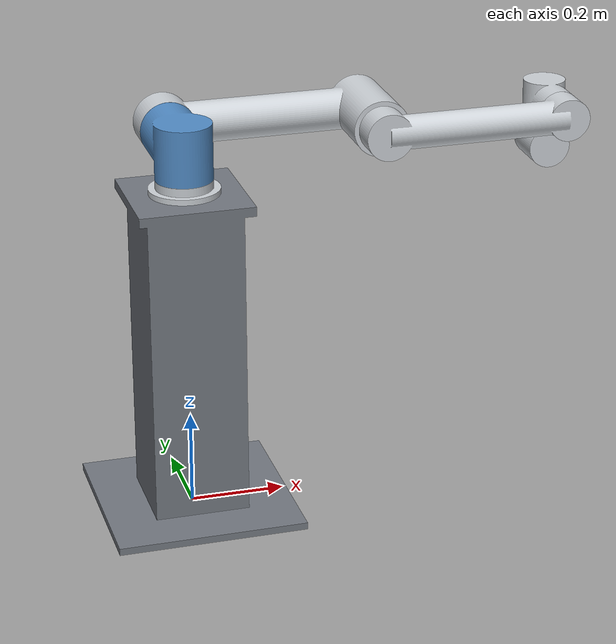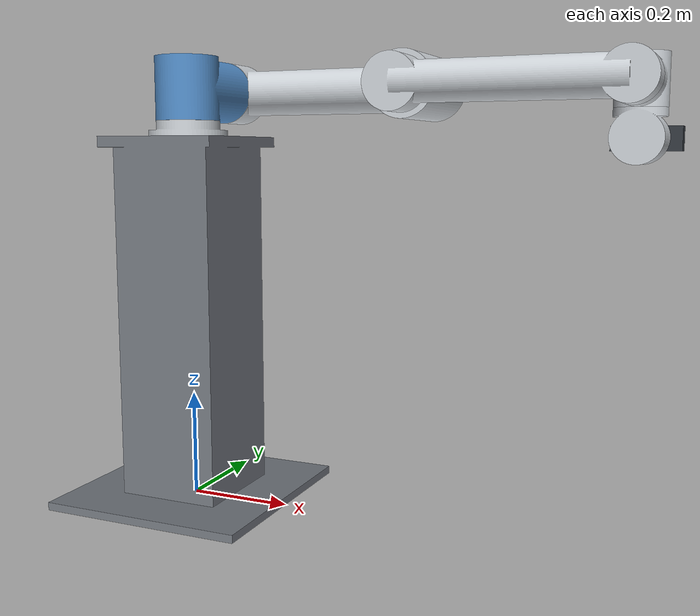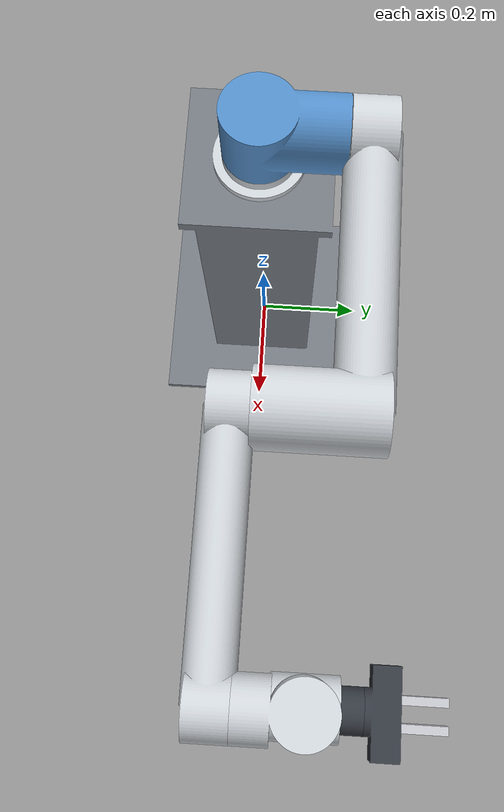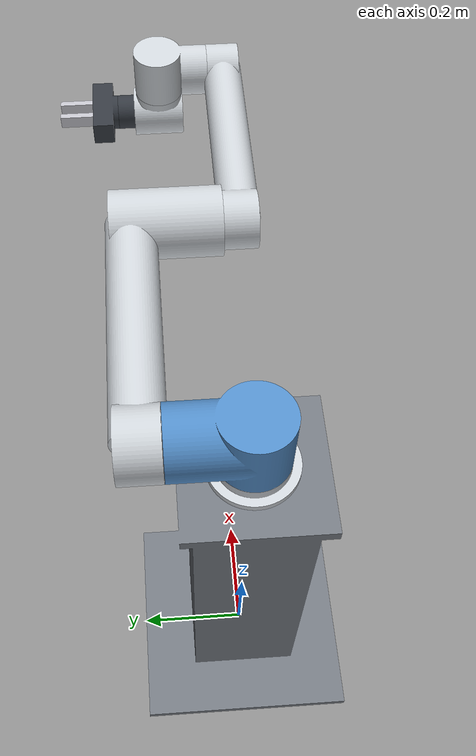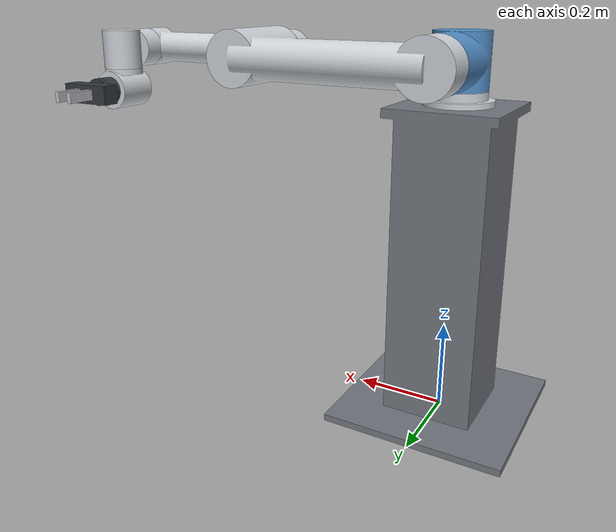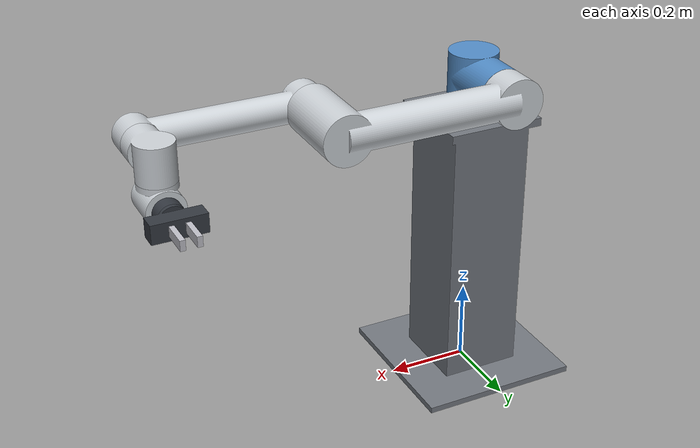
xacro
<?xml version="1.0" encoding="utf-8"?>
<!-- UR5 fixed manipulator
     Generated by build_models.py (CAD -> URDF). Meshes in package://ur5_description/meshes -->
<robot name="ur5" xmlns:xacro="http://www.ros.org/wiki/xacro">
  <!-- path to config/ros2_controllers.yaml, passed in by launch/gazebo.launch.py -->
  <xacro:arg name="controllers_file" default=""/>

  <link name="world"/>
  <link name="pedestal_link">
    <inertial>
      <origin xyz="0 0 0.327162" rpy="0 0 0"/>
      <mass value="25"/>
      <inertia ixx="1.28266" ixy="0" ixz="0" iyy="1.28266" iyz="0" izz="0.208436"/>
    </inertial>
    <visual>
      <origin xyz="0 0 0" rpy="0 0 0"/>
      <geometry>
        <mesh filename="package://ur5_description/meshes/pedestal_link.STL"/>
      </geometry>
      <material name="pedestal_link_material">
        <color rgba="0.45 0.47 0.5 1"/>
      </material>
    </visual>
    <collision>
      <origin xyz="0 0 0" rpy="0 0 0"/>
      <geometry>
        <mesh filename="package://ur5_description/meshes/pedestal_link.STL"/>
      </geometry>
    </collision>
  </link>
  <link name="base_link">
    <inertial>
      <origin xyz="0 0 0.0133971" rpy="0 0 0"/>
      <mass value="4"/>
      <inertia ixx="0.00489105" ixy="0" ixz="0" iyy="0.00489105" iyz="0" izz="0.00917701"/>
    </inertial>
    <visual>
      <origin xyz="0 0 0" rpy="0 0 0"/>
      <geometry>
        <mesh filename="package://ur5_description/meshes/base_link.STL"/>
      </geometry>
      <material name="base_link_material">
        <color rgba="0.8 0.82 0.84 1"/>
      </material>
    </visual>
    <collision>
      <origin xyz="0 0 0" rpy="0 0 0"/>
      <geometry>
        <mesh filename="package://ur5_description/meshes/base_link.STL"/>
      </geometry>
    </collision>
  </link>
  <link name="shoulder_link">
    <inertial>
      <origin xyz="0 0.035876 0.000234252" rpy="0 0 0"/>
      <mass value="3.7"/>
      <inertia ixx="0.0125603" ixy="0" ixz="0" iyy="0.00714574" iyz="3.10949e-05" izz="0.0120746"/>
    </inertial>
    <visual>
      <origin xyz="0 0 0" rpy="0 0 0"/>
      <geometry>
        <mesh filename="package://ur5_description/meshes/shoulder_link.STL"/>
      </geometry>
      <material name="shoulder_link_material">
        <color rgba="0.32 0.55 0.78 1"/>
      </material>
    </visual>
    <collision>
      <origin xyz="0 0 0" rpy="0 0 0"/>
      <geometry>
        <mesh filename="package://ur5_description/meshes/shoulder_link.STL"/>
      </geometry>
    </collision>
  </link>
  <link name="upper_arm_link">
    <inertial>
      <origin xyz="0 0.0117467 0.264596" rpy="0 0 0"/>
      <mass value="8.393"/>
      <inertia ixx="0.261276" ixy="0" ixz="0" iyy="0.247881" iyz="0.0313052" izz="0.0252335"/>
    </inertial>
    <visual>
      <origin xyz="0 0 0" rpy="0 0 0"/>
      <geometry>
        <mesh filename="package://ur5_description/meshes/upper_arm_link.STL"/>
      </geometry>
      <material name="upper_arm_link_material">
        <color rgba="0.8 0.82 0.84 1"/>
      </material>
    </visual>
    <collision>
      <origin xyz="0 0 0" rpy="0 0 0"/>
      <geometry>
        <mesh filename="package://ur5_description/meshes/upper_arm_link.STL"/>
      </geometry>
    </collision>
  </link>
  <link name="forearm_link">
    <inertial>
      <origin xyz="0 -0.03 0.188958" rpy="0 0 0"/>
      <mass value="2.275"/>
      <inertia ixx="0.0505335" ixy="0" ixz="0" iyy="0.0507488" iyz="0" izz="0.0016515"/>
    </inertial>
    <visual>
      <origin xyz="0 0 0" rpy="0 0 0"/>
      <geometry>
        <mesh filename="package://ur5_description/meshes/forearm_link.STL"/>
      </geometry>
      <material name="forearm_link_material">
        <color rgba="0.8 0.82 0.84 1"/>
      </material>
    </visual>
    <collision>
      <origin xyz="0 0 0" rpy="0 0 0"/>
      <geometry>
        <mesh filename="package://ur5_description/meshes/forearm_link.STL"/>
      </geometry>
    </collision>
  </link>
  <link name="wrist_1_link">
    <inertial>
      <origin xyz="0 0.0687143 0" rpy="0 0 0"/>
      <mass value="1.219"/>
      <inertia ixx="0.00253091" ixy="0" ixz="0" iyy="0.00136648" iyz="0" izz="0.00239867"/>
    </inertial>
    <visual>
      <origin xyz="0 0 0" rpy="0 0 0"/>
      <geometry>
        <mesh filename="package://ur5_description/meshes/wrist_1_link.STL"/>
      </geometry>
      <material name="wrist_1_link_material">
        <color rgba="0.8 0.82 0.84 1"/>
      </material>
    </visual>
    <collision>
      <origin xyz="0 0 0" rpy="0 0 0"/>
      <geometry>
        <mesh filename="package://ur5_description/meshes/wrist_1_link.STL"/>
      </geometry>
    </collision>
  </link>
  <link name="wrist_2_link">
    <inertial>
      <origin xyz="0 0.00215909 0.0889023" rpy="0 0 0"/>
      <mass value="1.219"/>
      <inertia ixx="0.00166796" ixy="0" ixz="0" iyy="0.00140825" iyz="-1.51276e-05" izz="0.00149394"/>
    </inertial>
    <visual>
      <origin xyz="0 0 0" rpy="0 0 0"/>
      <geometry>
        <mesh filename="package://ur5_description/meshes/wrist_2_link.STL"/>
      </geometry>
      <material name="wrist_2_link_material">
        <color rgba="0.8 0.82 0.84 1"/>
      </material>
    </visual>
    <collision>
      <origin xyz="0 0 0" rpy="0 0 0"/>
      <geometry>
        <mesh filename="package://ur5_description/meshes/wrist_2_link.STL"/>
      </geometry>
    </collision>
  </link>
  <link name="wrist_3_link">
    <inertial>
      <origin xyz="0 0.06615 0" rpy="0 0 0"/>
      <mass value="0.1879"/>
      <inertia ixx="6.44386e-05" ixy="0" ixz="0" iyy="9.62048e-05" iyz="0" izz="6.44386e-05"/>
    </inertial>
    <visual>
      <origin xyz="0 0 0" rpy="0 0 0"/>
      <geometry>
        <mesh filename="package://ur5_description/meshes/wrist_3_link.STL"/>
      </geometry>
      <material name="wrist_3_link_material">
        <color rgba="0.2 0.22 0.25 1"/>
      </material>
    </visual>
    <collision>
      <origin xyz="0 0 0" rpy="0 0 0"/>
      <geometry>
        <mesh filename="package://ur5_description/meshes/wrist_3_link.STL"/>
      </geometry>
    </collision>
  </link>
  <link name="tool0"/>
  <link name="gripper_base_link">
    <inertial>
      <origin xyz="0.0267883 0 0" rpy="0 0 0"/>
      <mass value="0.25"/>
      <inertia ixx="0.000330776" ixy="0" ixz="0" iyy="9.01869e-05" iyz="0" izz="0.000334216"/>
    </inertial>
    <visual>
      <origin xyz="0 0 0" rpy="0 0 0"/>
      <geometry>
        <mesh filename="package://ur5_description/meshes/gripper_base_link.STL"/>
      </geometry>
      <material name="gripper_base_link_material">
        <color rgba="0.2 0.22 0.25 1"/>
      </material>
    </visual>
    <collision>
      <origin xyz="0 0 0" rpy="0 0 0"/>
      <geometry>
        <mesh filename="package://ur5_description/meshes/gripper_base_link.STL"/>
      </geometry>
    </collision>
  </link>
  <link name="gripper_left_finger">
    <inertial>
      <origin xyz="0.0325 0.006 0" rpy="0 0 0"/>
      <mass value="0.03"/>
      <inertia ixx="1.8e-06" ixy="0" ixz="0" iyy="1.20025e-05" iyz="0" izz="1.09225e-05"/>
    </inertial>
    <visual>
      <origin xyz="0 0 0" rpy="0 0 0"/>
      <geometry>
        <mesh filename="package://ur5_description/meshes/gripper_left_finger.STL"/>
      </geometry>
      <material name="gripper_left_finger_material">
        <color rgba="0.75 0.75 0.78 1"/>
      </material>
    </visual>
    <collision>
      <origin xyz="0 0 0" rpy="0 0 0"/>
      <geometry>
        <mesh filename="package://ur5_description/meshes/gripper_left_finger.STL"/>
      </geometry>
    </collision>
  </link>
  <link name="gripper_right_finger">
    <inertial>
      <origin xyz="0.0325 -0.006 0" rpy="0 0 0"/>
      <mass value="0.03"/>
      <inertia ixx="1.8e-06" ixy="0" ixz="0" iyy="1.20025e-05" iyz="0" izz="1.09225e-05"/>
    </inertial>
    <visual>
      <origin xyz="0 0 0" rpy="0 0 0"/>
      <geometry>
        <mesh filename="package://ur5_description/meshes/gripper_right_finger.STL"/>
      </geometry>
      <material name="gripper_right_finger_material">
        <color rgba="0.75 0.75 0.78 1"/>
      </material>
    </visual>
    <collision>
      <origin xyz="0 0 0" rpy="0 0 0"/>
      <geometry>
        <mesh filename="package://ur5_description/meshes/gripper_right_finger.STL"/>
      </geometry>
    </collision>
  </link>
  <link name="grasp_point"/>
  <joint name="world_joint" type="fixed">
    <origin xyz="0 0 0" rpy="0 0 0"/>
    <parent link="world"/>
    <child link="pedestal_link"/>
  </joint>
  <joint name="pedestal_joint" type="fixed">
    <origin xyz="0 0 0.7" rpy="0 0 0"/>
    <parent link="pedestal_link"/>
    <child link="base_link"/>
  </joint>
  <joint name="shoulder_pan_joint" type="revolute">
    <origin xyz="0 0 0.089159" rpy="0 0 0"/>
    <parent link="base_link"/>
    <child link="shoulder_link"/>
    <axis xyz="0 0 1"/>
    <limit lower="-6.28319" upper="6.28319" effort="150" velocity="3.15"/>
    <dynamics damping="0.1" friction="0.0"/>
  </joint>
  <joint name="shoulder_lift_joint" type="revolute">
    <origin xyz="0 0.13585 0" rpy="0 1.5708 0"/>
    <parent link="shoulder_link"/>
    <child link="upper_arm_link"/>
    <axis xyz="0 1 0"/>
    <limit lower="-6.28319" upper="6.28319" effort="150" velocity="3.15"/>
    <dynamics damping="0.1" friction="0.0"/>
  </joint>
  <joint name="elbow_joint" type="revolute">
    <origin xyz="0 -0.1197 0.425" rpy="0 0 0"/>
    <parent link="upper_arm_link"/>
    <child link="forearm_link"/>
    <axis xyz="0 1 0"/>
    <limit lower="-3.14159" upper="3.14159" effort="150" velocity="3.15"/>
    <dynamics damping="0.1" friction="0.0"/>
  </joint>
  <joint name="wrist_1_joint" type="revolute">
    <origin xyz="0 0 0.39225" rpy="0 1.5708 0"/>
    <parent link="forearm_link"/>
    <child link="wrist_1_link"/>
    <axis xyz="0 1 0"/>
    <limit lower="-6.28319" upper="6.28319" effort="28" velocity="3.2"/>
    <dynamics damping="0.1" friction="0.0"/>
  </joint>
  <joint name="wrist_2_joint" type="revolute">
    <origin xyz="0 0.093 0" rpy="0 0 0"/>
    <parent link="wrist_1_link"/>
    <child link="wrist_2_link"/>
    <axis xyz="0 0 1"/>
    <limit lower="-6.28319" upper="6.28319" effort="28" velocity="3.2"/>
    <dynamics damping="0.1" friction="0.0"/>
  </joint>
  <joint name="wrist_3_joint" type="revolute">
    <origin xyz="0 0 0.09465" rpy="0 0 0"/>
    <parent link="wrist_2_link"/>
    <child link="wrist_3_link"/>
    <axis xyz="0 1 0"/>
    <limit lower="-6.28319" upper="6.28319" effort="28" velocity="3.2"/>
    <dynamics damping="0.1" friction="0.0"/>
  </joint>
  <joint name="tool0_joint" type="fixed">
    <origin xyz="0 0.0823 0" rpy="0 0 1.5708"/>
    <parent link="wrist_3_link"/>
    <child link="tool0"/>
  </joint>
  <joint name="gripper_mount_joint" type="fixed">
    <origin xyz="0 0 0" rpy="0 0 0"/>
    <parent link="tool0"/>
    <child link="gripper_base_link"/>
  </joint>
  <joint name="gripper_left_joint" type="prismatic">
    <origin xyz="0.05 0.012 0" rpy="0 0 0"/>
    <parent link="gripper_base_link"/>
    <child link="gripper_left_finger"/>
    <axis xyz="0 1 0"/>
    <limit lower="0" upper="0.035" effort="40" velocity="0.1"/>
    <dynamics damping="0.1" friction="0.0"/>
  </joint>
  <joint name="gripper_right_joint" type="prismatic">
    <origin xyz="0.05 -0.012 0" rpy="0 0 0"/>
    <parent link="gripper_base_link"/>
    <child link="gripper_right_finger"/>
    <axis xyz="0 -1 0"/>
    <limit lower="0" upper="0.035" effort="40" velocity="0.1"/>
    <dynamics damping="0.1" friction="0.0"/>
  </joint>
  <joint name="grasp_point_joint" type="fixed">
    <origin xyz="0.095 0 0" rpy="0 0 0"/>
    <parent link="gripper_base_link"/>
    <child link="grasp_point"/>
  </joint>

  <!-- ros2_control: Gazebo (gz_ros2_control) hardware interface -->
  <ros2_control name="GazeboSimSystem" type="system">
    <hardware>
      <plugin>gz_ros2_control/GazeboSimSystem</plugin>
    </hardware>
    <joint name="shoulder_pan_joint">
      <command_interface name="position"/>
      <state_interface name="position">
        <param name="initial_value">0</param>
      </state_interface>
      <state_interface name="velocity"/>
    </joint>
    <joint name="shoulder_lift_joint">
      <command_interface name="position"/>
      <state_interface name="position">
        <param name="initial_value">-1.57</param>
      </state_interface>
      <state_interface name="velocity"/>
    </joint>
    <joint name="elbow_joint">
      <command_interface name="position"/>
      <state_interface name="position">
        <param name="initial_value">1.2</param>
      </state_interface>
      <state_interface name="velocity"/>
    </joint>
    <joint name="wrist_1_joint">
      <command_interface name="position"/>
      <state_interface name="position">
        <param name="initial_value">-1.2</param>
      </state_interface>
      <state_interface name="velocity"/>
    </joint>
    <joint name="wrist_2_joint">
      <command_interface name="position"/>
      <state_interface name="position">
        <param name="initial_value">-1.57</param>
      </state_interface>
      <state_interface name="velocity"/>
    </joint>
    <joint name="wrist_3_joint">
      <command_interface name="position"/>
      <state_interface name="position">
        <param name="initial_value">0</param>
      </state_interface>
      <state_interface name="velocity"/>
    </joint>
    <joint name="gripper_left_joint">
      <command_interface name="position"/>
      <state_interface name="position">
        <param name="initial_value">0.03</param>
      </state_interface>
      <state_interface name="velocity"/>
    </joint>
    <joint name="gripper_right_joint">
      <command_interface name="position"/>
      <state_interface name="position">
        <param name="initial_value">0.03</param>
      </state_interface>
      <state_interface name="velocity"/>
    </joint>
  </ros2_control>

  <gazebo>
    <plugin filename="gz_ros2_control-system" name="gz_ros2_control::GazeboSimROS2ControlPlugin">
      <parameters>$(arg controllers_file)</parameters>
    </plugin>
  </gazebo>
</robot>
